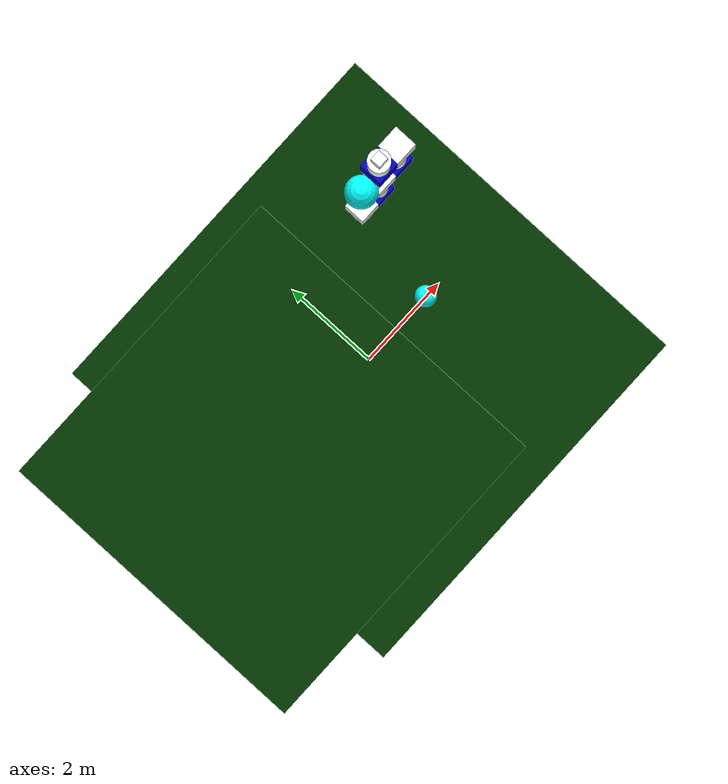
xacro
<?xml version="1.0"?>
<robot name="restorebot" xmlns:xacro="http://ros.org/wiki/xacro">

	<xacro:property name="AlDensity" value="2712" />

	<xacro:property name="platLen" value="8" />
	<xacro:property name="platWidth" value="8" />
	<xacro:property name="platHeight" value="1" />

	<xacro:property name="satLen" value="${5}" />
	<xacro:property name="satWidth" value="${5}" />
	<xacro:property name="satHeight" value="${5}" />

	<xacro:property name="cylRad" value="0.2" />
	<xacro:property name="cylLen" value = "0.8" />

	<material name="blue">
		<color rgba="0 0 0.8 1"/>
	</material>

	<material name="black">
		<color rgba="0 .2 0 1"/>
	</material>

	<material name="white">
		<color rgba="1 1 1 1"/>
	</material>

	<material name="cyan">
		<color rgba="0 1 1 1"/>
	</material>

	<!--	****************
			****************
			****************

			Base Platform

			****************
			****************
			****************
	-->

	<link name="platform_base">

		<xacro:property name="box_mass" value="${AlDensity*platLen*platWidth*platHeight}" />
		<xacro:macro name="default_box_inertia" params="mass">
			<inertial>
				<mass value="${mass}" />
				<inertia ixx="${platHeight*platHeight/12+platWidth*platWidth/12}" ixy="0.0" ixz="0.0" iyy="${platHeight*platHeight/12+platLen*platLen/12}" iyz="0.0" izz="${platLen*platLen/12 +platWidth*platWidth/12}" />
			</inertial>
		</xacro:macro>

		<xacro:macro name="platform_geom">
			<geometry>
				<box size="${platLen} ${platWidth} ${platHeight}" />
			</geometry>
		</xacro:macro>

		<visual>
			<xacro:platform_geom />
			<material name = "black"/>
		</visual>
		<collision>
			<xacro:platform_geom />
		</collision>
		<xacro:default_box_inertia mass ="${box_mass}" />
	</link>

	<!--	****************
			****************
			****************

 				Arm Link 1

			****************
			****************
			****************
	-->

	<link name="armLink1">

		<xacro:macro name="armLink1_geom">
			<geometry>
				<cylinder length="${armLink1Len}" radius="${armLink1Rad}"/>
			</geometry>
		</xacro:macro>

		<xacro:macro name="armLink1_offset">
			<origin rpy = "0 0 0" xyz="0 0 ${armLink1Len/2}" />
		</xacro:macro>

		<xacro:property name="armLink1Rad" value="${cylRad}" />
		<xacro:property name="armLink1Len" value = "${cylLen/2}" />
		<xacro:property name="armLink1Mass" value =
				"${AlDensity*3.14*armLink1Len*armLink1Rad*armLink1Rad}" />
		<visual>
			<xacro:armLink1_geom />
			<xacro:armLink1_offset />
			<material name="white"/>
		</visual>
		<collision>
			<xacro:armLink1_geom />
			<xacro:armLink1_offset />
		</collision>
		<inertial>
			<mass value="${armLink1Mass}" />
			<inertia ixx="${armLink1Len*armLink1Len/3+armLink1Rad*armLink1Rad/4}" ixy="0.0" ixz="0.0" iyy="${armLink1Len*armLink1Len/3+armLink1Rad*armLink1Rad/4}" iyz="0.0" izz="${armLink1Rad*armLink1Rad/2}" />
		</inertial>
	</link>

	<joint name="base_to_link1" type ="revolute">
		<parent link="platform_base"/>
		<child link="armLink1"/>
		<origin rpy = "0 0 0" xyz="${platLen/4} ${platWidth/4} ${platHeight/2}" />
		<axis xyz = "0 0 1" />
		<limit effort="100" lower="-3.14" upper="3.14" velocity="3"/>
	</joint>

	<link name="armLink1square">

		<xacro:property name="armLink1squareLen" value="${armLink1Rad*2.2}" />
		<xacro:property name="armLink1squareMass" value="${AlDensity*armLink1squareLen*armLink1squareLen*armLink1squareLen}" />

		<xacro:macro name="armLink1square_geom">
			<geometry>
				<box size="${armLink1squareLen} ${armLink1squareLen} ${armLink1squareLen}"/>
			</geometry>
		</xacro:macro>

		<xacro:macro name="armLink1square_offset">
			<origin rpy = "0 0 0" xyz="0 0 ${armLink1squareLen/2}" />
		</xacro:macro>

		<visual>
			<xacro:armLink1square_geom />
			<xacro:armLink1square_offset />
			<material name="white"/>
		</visual>
		<collision>
			<xacro:armLink1square_geom />
			<xacro:armLink1square_offset />
		</collision>
		<inertial>
			<mass value="${armLink1squareMass}" />
			<inertia ixx="${armLink1squareLen*armLink1squareLen * 5/12}" ixy="0.0" ixz="0.0" iyy="${armLink1squareLen*armLink1squareLen * 5/12}" iyz="0.0" izz="${armLink1squareLen*armLink1squareLen / 6}" />
		</inertial>
	</link>
s
	<joint name="armLink1Fixed" type ="fixed">
		<parent link="armLink1"/>
		<child link="armLink1square"/>
		<origin rpy = "0 0 0" xyz="0 0 ${armLink1Len}" />
	</joint>

	<!--	****************
			****************
			****************

 				Arm Link 2

			****************
			****************
			****************
	-->

	<link name="armLink2">

		<xacro:property name="armLink2Len" value="${armLink1squareLen}" />
		<xacro:property name="armLink2Mass" value="${AlDensity*armLink2Len*armLink2Len*armLink2Len}" />

		<xacro:macro name="armLink2_geom">
			<geometry>
				<box size="${armLink2Len} ${armLink2Len} ${armLink2Len}"/>
			</geometry>
		</xacro:macro>

		<xacro:macro name="armLink2_offset">
			<origin rpy = "0 0 0" xyz="0 0 0" />
		</xacro:macro>

		<visual>
			<xacro:armLink2_geom />
			<xacro:armLink2_offset />
			<material name="blue"/>
		</visual>
		<collision>
			<xacro:armLink2_geom />
			<xacro:armLink2_offset />
		</collision>
		<inertial>
			<mass value="${armLink2Mass}" />
			<inertia ixx="${armLink2Len*armLink2Len /6}" ixy="0.0" ixz="0.0" iyy="${armLink2Len*armLink2Len/6}" iyz="0.0" izz="${armLink2Len*armLink2Len /6}" />
		</inertial>
	</link>

	<joint name="armLink1_to_armLink2" type ="revolute">
		<parent link="armLink1square"/>
		<child link="armLink2"/>
		<origin rpy = "0 0 0" xyz="${armLink1squareLen} 0 ${armLink2Len/2}" />
		<axis xyz = "1 0 0" />
		<limit effort="100" lower="-3.14" upper="3.14" velocity="3"/>
	</joint>

	<!--	****************
			****************
			****************

 				Arm Link 3

			****************
			****************
			****************
	-->

	<link name="armLink3">

		<xacro:macro name="armLink3_geom">
			<geometry>
				<cylinder length="${armLink3Len}" radius="${armLink3Rad}"/>
			</geometry>
		</xacro:macro>

		<xacro:macro name="armLink3_offset">
			<origin rpy = "0 0 0" xyz="0 0 ${armLink3Len/2}" />
		</xacro:macro>

		<xacro:property name="armLink3Rad" value="${cylRad}" />
		<xacro:property name="armLink3Len" value = "${cylLen}" />
		<xacro:property name="armLink3Mass" value =
				"${AlDensity*3.14*armLink3Len*armLink3Rad*armLink3Rad}" />
		<visual>
			<xacro:armLink3_geom />
			<xacro:armLink3_offset />
			<material name="white"/>
		</visual>
		<collision>
			<xacro:armLink3_geom />
			<xacro:armLink3_offset />
		</collision>
		<inertial>
			<mass value="${armLink3Mass}" />
			<inertia ixx="${armLink3Len*armLink3Len/3+armLink3Rad*armLink3Rad/4}" ixy="0.0" ixz="0.0" iyy="${armLink3Len*armLink3Len/3+armLink3Rad*armLink3Rad/4}" iyz="0.0" izz="${armLink3Rad*armLink3Rad/2}" />
		</inertial>
	</link>

	<joint name="armLink2_to_armLink3" type ="revolute">
		<parent link="armLink2"/>
		<child link="armLink3"/>
		<origin rpy = "0 0 0" xyz="0 0 ${armLink2Len/2}" />
		<axis xyz = "0 0 1" />
		<limit effort="100" lower="-3.14" upper="3.14" velocity="3"/>
	</joint>

	<link name="armLink3square">

		<xacro:property name="armLink3squareLen" value="${armLink3Rad*2.2}" />
		<xacro:property name="armLink3squareMass" value="${AlDensity*armLink3squareLen*armLink3squareLen*armLink3squareLen}" />

		<xacro:macro name="armLink3square_geom">
			<geometry>
				<box size="${armLink3squareLen} ${armLink3squareLen} ${armLink3squareLen}"/>
			</geometry>
		</xacro:macro>

		<xacro:macro name="armLink3square_offset">
			<origin rpy = "0 0 0" xyz="0 0 ${armLink3squareLen/2}" />
		</xacro:macro>

		<visual>
			<xacro:armLink3square_geom />
			<xacro:armLink3square_offset />
			<material name="white"/>
		</visual>
		<collision>
			<xacro:armLink3square_geom />
			<xacro:armLink3square_offset />
		</collision>
		<inertial>
			<mass value="${armLink3squareMass}" />
			<inertia ixx="${armLink3squareLen*armLink3squareLen * 5/12}" ixy="0.0" ixz="0.0" iyy="${armLink3squareLen*armLink3squareLen * 5/12}" iyz="0.0" izz="${armLink3squareLen*armLink3squareLen / 6}" />
		</inertial>
	</link>

	<joint name="armLink3Fixed" type ="fixed">
		<parent link="armLink3"/>
		<child link="armLink3square"/>
		<origin rpy = "0 0 0" xyz="0 0 ${armLink3Len}" />
	</joint>

	<!--	****************
			****************
			****************

 				Arm Link 4

			****************
			****************
			****************
	-->

	<link name="armLink4">

		<xacro:property name="armLink4Len" value="${armLink3squareLen}" />
		<xacro:property name="armLink4Mass" value="${AlDensity*armLink4Len*armLink4Len*armLink4Len}" />

		<xacro:macro name="armLink4_geom">
			<geometry>
				<box size="${armLink4Len} ${armLink4Len} ${armLink4Len}"/>
			</geometry>
		</xacro:macro>

		<xacro:macro name="armLink4_offset">
			<origin rpy = "0 0 0" xyz="0 0 0" />
		</xacro:macro>

		<visual>
			<xacro:armLink4_geom />
			<xacro:armLink4_offset />
			<material name="blue"/>
		</visual>
		<collision>
			<xacro:armLink4_geom />
			<xacro:armLink4_offset />
		</collision>
		<inertial>
			<mass value="${armLink4Mass}" />
			<inertia ixx="${armLink4Len*armLink4Len /6}" ixy="0.0" ixz="0.0" iyy="${armLink4Len*armLink4Len/6}" iyz="0.0" izz="${armLink4Len*armLink4Len /6}" />
		</inertial>
	</link>

	<joint name="armLink3_to_armLink4" type ="revolute">
		<parent link="armLink3square"/>
		<child link="armLink4"/>
		<origin rpy = "0 0 0" xyz="${armLink3squareLen} 0 ${armLink4Len/2}" />
		<axis xyz = "1 0 0" />
		<limit effort="100" lower="-3.14" upper="3.14" velocity="3"/>
	</joint>

	<!--	****************
			****************
			****************

 				Arm Link 5

			****************
			****************
			****************
	-->

	<link name="armLink5">

		<xacro:macro name="armLink5_geom">
			<geometry>
				<cylinder length="${armLink5Len}" radius="${armLink5Rad}"/>
			</geometry>
		</xacro:macro>

		<xacro:macro name="armLink5_offset">
			<origin rpy = "0 0 0" xyz="0 0 ${armLink5Len/2}" />
		</xacro:macro>

		<xacro:property name="armLink5Rad" value="${cylRad}" />
		<xacro:property name="armLink5Len" value = "${cylLen}" />
		<xacro:property name="armLink5Mass" value =
				"${AlDensity*3.14*armLink5Len*armLink5Rad*armLink5Rad}" />
		<visual>
			<xacro:armLink5_geom />
			<xacro:armLink5_offset />
			<material name="white"/>
		</visual>
		<collision>
			<xacro:armLink5_geom />
			<xacro:armLink5_offset />
		</collision>
		<inertial>
			<mass value="${armLink5Mass}" />
			<inertia ixx="${armLink5Len*armLink5Len/3+armLink5Rad*armLink5Rad/4}" ixy="0.0" ixz="0.0" iyy="${armLink5Len*armLink5Len/3+armLink5Rad*armLink5Rad/4}" iyz="0.0" izz="${armLink5Rad*armLink5Rad/2}" />
		</inertial>
	</link>

	<joint name="armLink4_to_armLink5" type ="revolute">
		<parent link="armLink4"/>
		<child link="armLink5"/>
		<origin rpy = "0 0 0" xyz="0 0 ${armLink4Len/2}" />
		<axis xyz = "0 0 1" />
		<limit effort="100" lower="-3.14" upper="3.14" velocity="3"/>
	</joint>

	<link name="armLink5square">

		<xacro:property name="armLink5squareLen" value="${armLink5Rad*2.2}" />
		<xacro:property name="armLink5squareMass" value="${AlDensity*armLink5squareLen*armLink5squareLen*armLink5squareLen}" />

		<xacro:macro name="armLink5square_geom">
			<geometry>
				<box size="${armLink5squareLen} ${armLink5squareLen} ${armLink5squareLen}"/>
			</geometry>
		</xacro:macro>

		<xacro:macro name="armLink5square_offset">
			<origin rpy = "0 0 0" xyz="0 0 ${armLink5squareLen/2}" />
		</xacro:macro>

		<visual>
			<xacro:armLink5square_geom />
			<xacro:armLink5square_offset />
			<material name="white"/>
		</visual>
		<collision>
			<xacro:armLink5square_geom />
			<xacro:armLink5square_offset />
		</collision>
		<inertial>
			<mass value="${armLink5squareMass}" />
			<inertia ixx="${armLink5squareLen*armLink5squareLen * 5/12}" ixy="0.0" ixz="0.0" iyy="${armLink5squareLen*armLink5squareLen * 5/12}" iyz="0.0" izz="${armLink5squareLen*armLink5squareLen / 6}" />
		</inertial>
	</link>

	<joint name="armLink5Fixed" type ="fixed">
		<parent link="armLink5"/>
		<child link="armLink5square"/>
		<origin rpy = "0 0 0" xyz="0 0 ${armLink5Len}" />
	</joint>

	<!--	****************
			****************
			****************

 				Arm Link 6

			****************
			****************
			****************
	-->

	<link name="armLink6">

		<xacro:property name="armLink6Len" value="${armLink5squareLen}" />
		<xacro:property name="armLink6Mass" value="${AlDensity*armLink6Len*armLink6Len*armLink6Len}" />

		<xacro:macro name="armLink6_geom">
			<geometry>
				<box size="${armLink6Len} ${armLink6Len} ${armLink6Len}"/>
			</geometry>
		</xacro:macro>

		<xacro:macro name="armLink6_offset">
			<origin rpy = "0 0 0" xyz="0 0 0" />
		</xacro:macro>

		<visual>
			<xacro:armLink6_geom />
			<xacro:armLink6_offset />
			<material name="blue"/>
		</visual>
		<collision>
			<xacro:armLink6_geom />
			<xacro:armLink6_offset />
		</collision>
		<inertial>
			<mass value="${armLink6Mass}" />
			<inertia ixx="${armLink6Len*armLink6Len /6}" ixy="0.0" ixz="0.0" iyy="${armLink6Len*armLink6Len/6}" iyz="0.0" izz="${armLink6Len*armLink6Len /6}" />
		</inertial>
	</link>

	<joint name="armLink5_to_armLink6" type ="revolute">
		<parent link="armLink5square"/>
		<child link="armLink6"/>
		<origin rpy = "0 0 0" xyz="${-1*armLink5squareLen} 0 ${armLink6Len/2}" />
		<axis xyz = "1 0 0" />
		<limit effort="100" lower="-3.14" upper="3.14" velocity="3"/>
	</joint>

	<!--	****************
			****************
			****************

 				Arm Link 7

			****************
			****************
			****************
	-->

	<link name="armLink7">

		<xacro:macro name="armLink7_geom">
			<geometry>
				<cylinder length="${armLink7Len}" radius="${armLink7Rad}"/>
			</geometry>
		</xacro:macro>

		<xacro:macro name="armLink7_offset">
			<origin rpy = "0 0 0" xyz="0 0 ${armLink7Len/2}" />
		</xacro:macro>

		<xacro:property name="armLink7Rad" value="${cylRad}" />
		<xacro:property name="armLink7Len" value = "${armLink1Len}" />
		<xacro:property name="armLink7Mass" value =
				"${AlDensity*3.14*armLink7Len*armLink7Rad*armLink7Rad}" />

		<visual>
			<xacro:armLink7_geom />
			<xacro:armLink7_offset />
			<material name="white"/>
		</visual>
		<collision>
			<xacro:armLink7_geom />
			<xacro:armLink7_offset />
		</collision>
		<inertial>
			<mass value="${armLink7Mass}" />
			<inertia ixx="${armLink7Len*armLink7Len/3+armLink7Rad*armLink7Rad/4}" ixy="0.0" ixz="0.0" iyy="${armLink7Len*armLink7Len/3+armLink7Rad*armLink7Rad/4}" iyz="0.0" izz="${armLink7Rad*armLink7Rad/2}" />
		</inertial>
	</link>

	<joint name="armLink6_to_armLink7" type ="revolute">
		<parent link="armLink6"/>
		<child link="armLink7"/>
		<origin rpy = "0 0 0" xyz="0 0 ${armLink6Len/2}" />
		<axis xyz = "0 0 1" />
		<limit effort="100" lower="-3.14" upper="3.14" velocity="3"/>
	</joint>

	<link name="armLink7square">

		<xacro:property name="armLink7squareLen" value="${armLink7Rad}" />
		<xacro:property name="armLink7squareMass" value="${AlDensity*armLink7squareLen*armLink7squareLen*armLink7squareLen}" />

		<xacro:macro name="armLink7square_geom">
			<geometry>
				<box size="${armLink7squareLen} ${armLink7squareLen} ${armLink7squareLen}"/>
			</geometry>
		</xacro:macro>

		<xacro:macro name="armLink7square_offset">
			<origin rpy = "0 0 0" xyz="0 0 ${armLink7squareLen/2}" />
		</xacro:macro>

		<visual>
			<xacro:armLink7square_geom />
			<xacro:armLink7square_offset />
			<material name="white"/>
		</visual>
		<collision>
			<xacro:armLink7square_geom />
			<xacro:armLink7square_offset />
		</collision>
		<inertial>
			<mass value="${armLink7squareMass}" />
			<inertia ixx="${armLink7squareLen*armLink7squareLen * 5/12}" ixy="0.0" ixz="0.0" iyy="${armLink7squareLen*armLink7squareLen * 5/12}" iyz="0.0" izz="${armLink7squareLen*armLink7squareLen / 6}" />
		</inertial>
	</link>

	<joint name="armLink7Fixed" type ="fixed">
		<parent link="armLink7"/>
		<child link="armLink7square"/>
		<origin rpy = "0 0 0" xyz="0 0 ${armLink7Len}" />
	</joint>

	<!--	****************
			****************
			****************

 Beginning of the Satellite/Support Section

			****************
			****************
			****************
	-->

	<xacro:property name="supArc" value="1" />
	<xacro:property name="supLen" value="1.5" />
	<xacro:property name="supRad" value=".2" />
	<xacro:property name="supMass" value =
				"${AlDensity*3.14*supLen*supRad*supRad}" />

	<xacro:macro name="sup_geom">
		<geometry>
			<cylinder length="${supLen}" radius="${supRad}"/>
		</geometry>
	</xacro:macro>

	<xacro:macro name="sup_inertia">
		<inertial>
			<mass value="${supMass}" />
			<inertia ixx="${supLen*supLen/3+supRad*supRad/4}" ixy="0.0" ixz="0.0" iyy="${supLen*supLen/3+supRad*supRad/4}" iyz="0.0" izz="${supRad*supRad/2}" />
		</inertial>
	</xacro:macro>

	<link name = "support1">
		<xacro:macro name="support1_offset">
			<origin rpy = "0 0 0" xyz = "0 0 ${supLen/2}" />
		</xacro:macro>

		<visual>
			<xacro:sup_geom />
			<xacro:support1_offset />
			<material name="black"/>
		</visual>
		<collision>
			<xacro:sup_geom />
			<xacro:support1_offset />
		</collision>
		<xacro:sup_inertia />
	</link>

	<joint name="base_to_sup1" type ="fixed">
		<parent link="platform_base"/>
		<child link="support1"/>
		<origin rpy = "0 0 0" xyz="${-1*platLen/4} ${-1*supArc} ${platHeight/2}" />
	</joint>

	<link name = "support2">
		<xacro:macro name="support2_offset">
			<origin rpy = "0 0 0" xyz = "0 0 ${supLen/2}" />
		</xacro:macro>

		<visual>
			<xacro:sup_geom />
			<xacro:support1_offset />
			<material name="black"/>
		</visual>
		<collision>
			<xacro:sup_geom />
			<xacro:support1_offset />
		</collision>
		<xacro:sup_inertia />
	</link>

	<joint name="base_to_sup2" type ="fixed">
		<parent link="platform_base"/>
		<child link="support2"/>
		<origin rpy = "0 0 0" xyz="${-1*platLen/4+supArc*1.7/2} ${supArc/2} ${platHeight/2}" />
	</joint>

	<link name = "support3">
		<xacro:macro name="support3_offset">
			<origin rpy = "0 0 0" xyz = "0 0 ${supLen/2}" />
		</xacro:macro>

		<visual>
			<xacro:sup_geom />
			<xacro:support1_offset />
			<material name="black"/>
		</visual>
		<collision>
			<xacro:sup_geom />
			<xacro:support1_offset />
		</collision>
		<xacro:sup_inertia />
	</link>

	<joint name="base_to_sup3" type ="fixed">
		<parent link="platform_base"/>
		<child link="support3"/>
		<origin rpy = "0 0 0" xyz="${-1*platLen/4-supArc*1.7/2} ${supArc/2} ${platHeight/2}" />
	</joint>

	<!--	****************
			****************
			****************

	 			Satellite

			****************
			****************
			****************
	-->

	<link name="satellite">

		<xacro:property name="satMass" value="${AlDensity*satLen*satWidth*satHeight}" />

		<xacro:macro name="sat_geom">
			<geometry>
				<box size="${satLen} ${satWidth} ${satHeight}"/>
			</geometry>
		</xacro:macro>

		<xacro:macro name="sat_offset">
			<origin rpy = "0 0 0" xyz="0 0 ${satHeight/2}" />
		</xacro:macro>

		<visual>
			<xacro:sat_geom />
			<xacro:sat_offset />
			<material name="black"/>
		</visual>
		<collision>
			<xacro:sat_geom />
			<xacro:sat_offset />
		</collision>
		<inertial>
			<mass value="${satMass}" />
			<inertia ixx="${satHeight*satHeight/3+satWidth*satWidth/12}" ixy="0.0" ixz="0.0" iyy="${satHeight*satHeight/3+satLen*satLen/12}" iyz="0.0" izz="${satLen*satLen/+satWidth*satWidth/12}" />
		</inertial>
	</link>

	<joint name="sup1_to_satellite" type ="fixed">
		<parent link="support1"/>
		<child link="satellite"/>
		<origin rpy = "0 0 0" xyz="${0} ${supArc} ${supLen}" />
	</joint>

	<!--	****************
			****************
			****************

	 		  Clutter

			****************
			****************
			****************
	-->

	<link name="clutter1">
		<xacro:property name="c1Mass" value="${AlDensity*c1Rad*c1Rad*c1Rad}" />
		<xacro:property name="c1Rad" value=".3" />

		<xacro:macro name="c1_geom">
			<geometry>
				<sphere radius="${c1Rad}"/>
			</geometry>
		</xacro:macro>

		<visual>
			<xacro:c1_geom />
			<material name="cyan"/>
		</visual>
		<collision>
			<xacro:c1_geom />
		</collision>
		<inertial>
			<mass value="${c1Mass}" />
			<inertia ixx="${2/5*c1Rad*c1Rad}" ixy="0.0" ixz="0.0" iyy="${2/5*c1Rad*c1Rad}" iyz="0.0" izz="${2/5*c1Rad*c1Rad}" />
		</inertial>
	</link>

	<joint name="platform_to_clutter1" type="fixed">
		<parent link="platform_base"/>
		<child link="clutter1"/>
		<origin rpy = "0 0 0" xyz = "${2} ${2} ${platHeight+2}" />
	</joint>

	<link name="clutter2">
		<xacro:property name="c2Mass" value="${AlDensity*c2Rad*c2Rad*c2Rad}" />
		<xacro:property name="c2Rad" value=".2" />

		<xacro:macro name="c2_geom">
			<geometry>
				<sphere radius="${c2Rad}"/>
			</geometry>
		</xacro:macro>

		<visual>
			<xacro:c2_geom />
			<material name="cyan"/>
		</visual>
		<collision>
			<xacro:c2_geom />
		</collision>
		<inertial>
			<mass value="${c2Mass}" />
			<inertia ixx="${2/5*c2Rad*c2Rad}" ixy="0.0" ixz="0.0" iyy="${2/5*c2Rad*c2Rad}" iyz="0.0" izz="${2/5*c2Rad*c2Rad}" />
		</inertial>
	</link>

	<joint name="platform_to_clutter2" type="fixed">
		<parent link="platform_base"/>
		<child link="clutter2"/>
		<origin rpy = "0 0 0" xyz = "${1.5} ${0} ${platHeight+1}" />
	</joint>
</robot>
